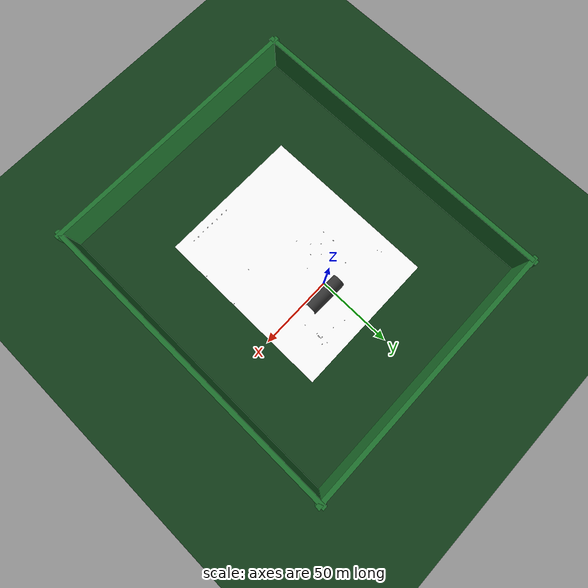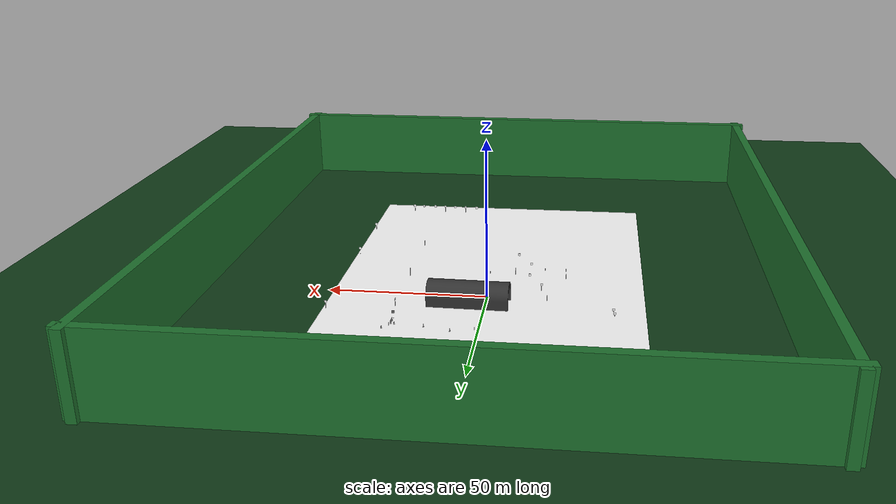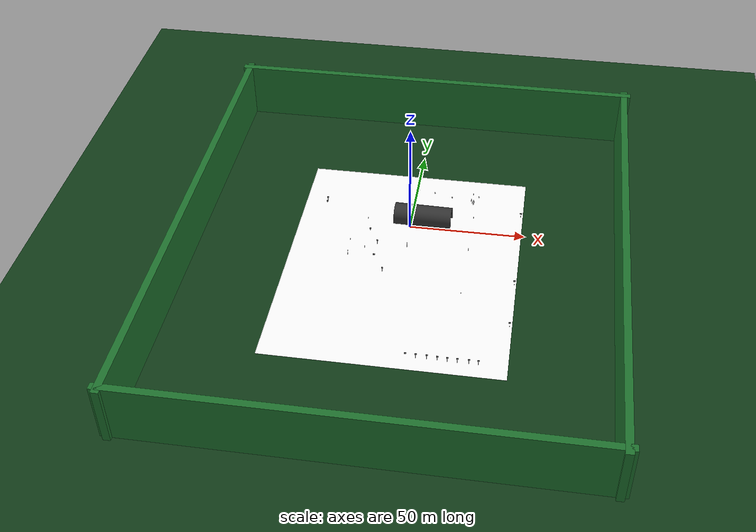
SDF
<sdf version="1.10">
 <world name="benim_dunyam">
  <plugin name="gz::sim::systems::UserCommands" filename="gz-sim-user-commands-system"/>
  <plugin name="gz::sim::systems::Sensors" filename="gz-sim-sensors-system">
   <render_engine>ogre2</render_engine>
  </plugin>
  <plugin name="gz::sim::systems::Physics" filename="gz-sim-physics-system"/>
  <plugin name="gz::sim::systems::SceneBroadcaster" filename="gz-sim-scene-broadcaster-system"/>
  <plugin name="gz::sim::systems::Imu" filename="gz-sim-imu-system"/>
  <plugin name="gz::sim::systems::NavSat" filename="gz-sim-navsat-system"/>
  <spherical_coordinates>
   <surface_model>EARTH_WGS84</surface_model>
   <world_frame_orientation>ENU</world_frame_orientation>
   <latitude_deg>40.7899</latitude_deg>
   <longitude_deg>29.5089</longitude_deg>
   <elevation>30.0</elevation>
   <heading_deg>0</heading_deg>
  </spherical_coordinates>
  <gravity>0 0 -9.8000000000000007</gravity>
  <magnetic_field>5.5644999999999998e-06 2.2875799999999999e-05 -4.2388400000000002e-05</magnetic_field>
  <atmosphere type="adiabatic"/>
  <physics type="ode">
   <max_step_size>0.004</max_step_size>
   <real_time_factor>1</real_time_factor>
   <real_time_update_rate>250</real_time_update_rate>
  </physics>
  <scene>
   <ambient>0.400000006 0.400000006 0.400000006 1</ambient>
   <background>0.300000012 0.600000024 0.899999976 1</background>
   <shadows>false</shadows>
  </scene>
  <model name="zemin">
   <static>true</static>
   <link name="link">
    <collision name="collision">
     <geometry><plane><normal>0 0 1</normal><size>1000 1000</size></plane></geometry>
    </collision>
    <visual name="visual">
     <geometry><plane><normal>0 0 1</normal><size>1000 1000</size></plane></geometry>
     <material><ambient>0.06 0.2 0.08 1</ambient><diffuse>0.07 0.24 0.1 1</diffuse></material>
    </visual>
    <inertial>
     <mass>1</mass>
     <inertia><ixx>1</ixx><ixy>0</ixy><ixz>0</ixz><iyy>1</iyy><iyz>0</iyz><izz>1</izz></inertia>
    </inertial>
   </link>
  </model>
  <model name="cevre_duvar_kuzey">
   <static>true</static>
   <pose>0 80 12.5 0 0 0</pose>
   <link name="link">
    <collision name="collision"><geometry><box><size>186 3 25</size></box></geometry></collision>
    <visual name="visual">
     <geometry><box><size>186 3 25</size></box></geometry>
     <material><ambient>0.1 0.4 0.15 1</ambient><diffuse>0.12 0.45 0.18 1</diffuse></material>
    </visual>
   </link>
  </model>
  <model name="cevre_duvar_guney">
   <static>true</static>
   <pose>0 -130 12.5 0 0 0</pose>
   <link name="link">
    <collision name="collision"><geometry><box><size>186 3 25</size></box></geometry></collision>
    <visual name="visual">
     <geometry><box><size>186 3 25</size></box></geometry>
     <material><ambient>0.1 0.4 0.15 1</ambient><diffuse>0.12 0.45 0.18 1</diffuse></material>
    </visual>
   </link>
  </model>
  <model name="cevre_duvar_dogu">
   <static>true</static>
   <pose>90 -25 12.5 0 0 0</pose>
   <link name="link">
    <collision name="collision"><geometry><box><size>3 216 25</size></box></geometry></collision>
    <visual name="visual">
     <geometry><box><size>3 216 25</size></box></geometry>
     <material><ambient>0.1 0.4 0.15 1</ambient><diffuse>0.12 0.45 0.18 1</diffuse></material>
    </visual>
   </link>
  </model>
  <model name="cevre_duvar_bati">
   <static>true</static>
   <pose>-90 -25 12.5 0 0 0</pose>
   <link name="link">
    <collision name="collision"><geometry><box><size>3 216 25</size></box></geometry></collision>
    <visual name="visual">
     <geometry><box><size>3 216 25</size></box></geometry>
     <material><ambient>0.1 0.4 0.15 1</ambient><diffuse>0.12 0.45 0.18 1</diffuse></material>
    </visual>
   </link>
  </model>
  <model name="resimli_kutu">
   <static>true</static>
   <pose>0 -24.217950820922852 0.0099999997764825821 0 0 0</pose>
   <link name="link">
    <collision name="collision">
     <geometry><box><size>97 120 0.10000000000000001</size></box></geometry>
    </collision>
    <visual name="visual">
     <geometry><box><size>97 120 0.10000000000000001</size></box></geometry>
     <material>
      <ambient>1 1 1 1</ambient>
      <diffuse>1 1 1 1</diffuse>
      <pbr><metal><albedo_map>map.jpeg</albedo_map></metal></pbr>
     </material>
    </visual>
    <inertial>
     <mass>1</mass>
     <inertia><ixx>1</ixx><ixy>0</ixy><ixz>0</ixz><iyy>1</iyy><iyz>0</iyz><izz>1</izz></inertia>
    </inertial>
   </link>
  </model>
  <model name="karanlik_tunel">
   <static>true</static>
   <pose>-7.4512128829956055 1.0417424440383911 -0.0001113254766096361 1.5707900011420242 9.6199811833783241e-05 1.5495800128730692</pose>
   <link name="tunel_link">
    <collision name="collision">
     <geometry>
      <mesh>
       <uri>file:///home/bekir/sim2_ws/otonom_projem/teknofest_haritası/tunnel.STL</uri>
       <scale>0.001 0.001 0.001</scale>
      </mesh>
     </geometry>
    </collision>
    <visual name="visual">
     <geometry>
      <mesh>
       <uri>file:///home/bekir/sim2_ws/otonom_projem/teknofest_haritası/tunnel.STL</uri>
       <scale>0.001 0.001 0.001</scale>
      </mesh>
     </geometry>
     <material>
      <ambient>0.200000003 0.200000003 0.200000003 1</ambient>
      <diffuse>0.200000003 0.200000003 0.200000003 1</diffuse>
     </material>
    </visual>
    <inertial>
     <mass>1</mass>
     <inertia><ixx>1</ixx><ixy>0</ixy><ixz>0</ixz><iyy>1</iyy><iyz>0</iyz><izz>1</izz></inertia>
    </inertial>
   </link>
  </model>
  <include>
   <uri>file:///home/bekir/sim2_ws/otonom_projem/models/ileri_ve_sola</uri>
   <name>ileri_ve_sola</name>
   <pose>47.472900390625 -55.592700958251953 0 0 0 1.5137523604266279</pose>
  </include>
  <include>
   <uri>file:///home/bekir/sim2_ws/otonom_projem/models/ileri_mecburi</uri>
   <name>ileri_mecburi</name>
   <pose>47.700298309326172 -31.111000061035156 0 0 0 1.5673020140724063</pose>
  </include>
  <include>
   <uri>file:///home/bekir/sim2_ws/otonom_projem/models/doner_kavsak</uri>
   <name>doner_kavsak</name>
   <pose>-7.4564199447631836 -30.832799911499023 0 0 0 1.5745649316766441</pose>
  </include>
  <include>
   <uri>file:///home/bekir/sim2_ws/otonom_projem/models/doner_kavsak</uri>
   <name>doner_kavsak_0</name>
   <pose>0.64328380095955318 -14.002350820563267 0 0 0 0</pose>
  </include>
  <include>
   <uri>file:///home/bekir/sim2_ws/otonom_projem/models/doner_kavsak</uri>
   <name>doner_kavsak_1</name>
   <pose>-16.444700241088867 -6.3995499610900879 0 0 0 1.7411529579494134</pose>
  </include>
  <include>
   <uri>file:///home/bekir/sim2_ws/otonom_projem/models/tunel</uri>
   <name>tunel</name>
   <pose>-18.585091821299244 0.89085390916381824 0 0 0 0</pose>
  </include>
  <include>
   <uri>file:///home/bekir/sim2_ws/otonom_projem/models/tunel</uri>
   <name>tunel_0</name>
   <pose>27.023598720464566 9.4946881823659357 0 0 0 0</pose>
  </include>
  <include>
   <uri>file:///home/bekir/sim2_ws/otonom_projem/models/sola_mecburi</uri>
   <name>sola_mecburi</name>
   <pose>47.542598724365234 13.166600227355957 0 0 0 1.6209210873125985</pose>
  </include>
  <include>
   <uri>file:///home/bekir/sim2_ws/otonom_projem/models/park_yeri</uri>
   <name>park_yeri</name>
   <pose>33.478801727294922 -77.750900268554688 0 0 0 1.5569856221732958</pose>
  </include>
  <include>
   <uri>file:///home/bekir/sim2_ws/otonom_projem/models/park_yeri</uri>
   <name>park_yeri_0</name>
   <pose>29.075799942016602 -77.846000671386719 0 0 0 1.5834751950832771</pose>
  </include>
  <include>
   <uri>file:///home/bekir/sim2_ws/otonom_projem/models/park_yeri</uri>
   <name>park_yeri_1</name>
   <pose>25.192100524902344 -77.93499755859375 0 0 0 1.6052076382958553</pose>
  </include>
  <include>
   <uri>file:///home/bekir/sim2_ws/otonom_projem/models/park_yeri</uri>
   <name>park_yeri_2</name>
   <pose>8.9960098266601562 -77.655899047851562 0 0 0 1.5691756960931018</pose>
  </include>
  <include>
   <uri>file:///home/bekir/sim2_ws/otonom_projem/models/park_yapilmaz</uri>
   <name>park_yapilmaz</name>
   <pose>17.251762390136719 -77.713630676269531 0 0 0 1.5446400052404645</pose>
  </include>
  <include>
   <uri>file:///home/bekir/sim2_ws/otonom_projem/models/park_yapilmaz</uri>
   <name>park_yapilmaz_0</name>
   <pose>12.999500274658203 -77.689903259277344 0 0 0 1.5768943109040798</pose>
  </include>
  <include>
   <uri>file:///home/bekir/sim2_ws/otonom_projem/models/park_yapilmaz</uri>
   <name>park_yapilmaz_1</name>
   <pose>21.345500946044922 -77.773597717285156 0 0 0 1.576919346272964</pose>
  </include>
  <include>
   <uri>file:///home/bekir/sim2_ws/otonom_projem/models/park_yapilmaz</uri>
   <name>park_yapilmaz_2</name>
   <pose>37.127399444580078 -77.717697143554688 0 0 0 1.5593144509498418</pose>
  </include>
  <include>
   <uri>file:///home/bekir/sim2_ws/otonom_projem/models/traffic_cone</uri>
   <name>traffic_cone</name>
   <pose>25.926326996957258 19.452180500700294 0 0 0 0</pose>
  </include>
  <include>
   <uri>file:///home/bekir/sim2_ws/otonom_projem/models/traffic_cone</uri>
   <name>traffic_cone_0</name>
   <pose>25.973527951162051 20.087473180794717 0 0 0 0</pose>
  </include>
  <include>
   <uri>file:///home/bekir/sim2_ws/otonom_projem/models/traffic_cone</uri>
   <name>traffic_cone_1</name>
   <pose>26.059315281973607 20.75485639546244 0 0 0 0</pose>
  </include>
  <include>
   <uri>file:///home/bekir/sim2_ws/otonom_projem/models/traffic_cone</uri>
   <name>traffic_cone_2</name>
   <pose>25.892039389447376 21.612924291936967 0 0 0 0</pose>
  </include>
  <include>
   <uri>file:///home/bekir/sim2_ws/otonom_projem/models/traffic_cone</uri>
   <name>traffic_cone_3</name>
   <pose>24.865566982384649 21.733112276726388 0 0 0 0</pose>
  </include>
  <include>
   <uri>file:///home/bekir/sim2_ws/otonom_projem/models/traffic_cone</uri>
   <name>engel_koni_1</name>
   <pose>28.0 24.8 0 0 0 0</pose>
  </include>
  <include>
   <uri>file:///home/bekir/sim2_ws/otonom_projem/models/traffic_cone</uri>
   <name>engel_koni_2</name>
   <pose>16.0 22.8 0 0 0 0</pose>
  </include>
  <include>
   <uri>file:///home/bekir/sim2_ws/otonom_projem/models/traffic_cone</uri>
   <name>engel_koni_3</name>
   <pose>8.0 24.8 0 0 0 0</pose>
  </include>
  <include>
   <uri>file:///home/bekir/sim2_ws/otonom_projem/models/saga_donulmez</uri>
   <name>saga_donulmez</name>
   <pose>25.791000366210938 18.105899810791016 0 0 0 -1.5394454577597889</pose>
  </include>
  <include>
   <uri>file:///home/bekir/sim2_ws/otonom_projem/models/gidis_gelis</uri>
   <name>gidis_gelis</name>
   <pose>25.444447529205817 26.051460582423942 0 0 0 0</pose>
  </include>
  <include>
   <uri>file:///home/bekir/sim2_ws/otonom_projem/models/sagdan_gidin</uri>
   <name>sagdan_gidin</name>
   <pose>-7.2653097228200281 -18.333708716522899 0 0 0 0</pose>
  </include>
  <include>
   <uri>file:///home/bekir/sim2_ws/otonom_projem/models/sagdan_gidin</uri>
   <name>sagdan_gidin_0</name>
   <pose>-12.272252082824707 -13.754071235656738 0 0 0 1.5369400024285722</pose>
  </include>
  <include>
   <uri>file:///home/bekir/sim2_ws/otonom_projem/models/sagdan_gidin</uri>
   <name>sagdan_gidin_1</name>
   <pose>-16.892172240397691 -18.447215505310755 0 0 0 0</pose>
  </include>
  <include>
   <uri>file:///home/bekir/sim2_ws/otonom_projem/models/sagdan_gidin</uri>
   <name>sagdan_gidin_2</name>
   <pose>-12.187546730041504 -23.046276092529297 0 0 0 1.5864399632229254</pose>
  </include>
  <include>
   <uri>file:///home/bekir/sim2_ws/otonom_projem/models/saga_donulmez</uri>
   <name>saga_donulmez_0</name>
   <pose>26.517962236059137 -39.546736632517174 0 0 0 0</pose>
  </include>
  <include>
   <uri>file:///home/bekir/sim2_ws/otonom_projem/models/sola_donulmez</uri>
   <name>sola_donulmez</name>
   <pose>26.898099091514446 -14.111856825308676 0 0 0 0</pose>
  </include>
  <include>
   <uri>file:///home/bekir/sim2_ws/otonom_projem/models/sola_donulmez</uri>
   <name>sola_donulmez_1</name>
   <pose>-38.7 10.0 0 0 0 1.71</pose>
  </include>
  <include>
   <uri>file:///home/bekir/sim2_ws/otonom_projem/models/durak</uri>
   <name>durak</name>
   <pose>0.68867765882772147 26.154963572765787 0 0 0 0</pose>
  </include>
  <include>
   <uri>file:///home/bekir/sim2_ws/otonom_projem/models/durak</uri>
   <name>durak_0</name>
   <pose>-39.011001586914062 12.549599647521973 0 0 0 1.7097554124844934</pose>
  </include>
  <include>
   <uri>file:///home/bekir/sim2_ws/otonom_projem/models/girilmez</uri>
   <name>girilmez</name>
   <pose>-23.80620002746582 -14.254682540893555 0 0 0 0</pose>
  </include>
  <include>
   <uri>file:///home/bekir/sim2_ws/otonom_projem/models/doner_kavsak</uri>
   <name>doner_kavsak_2</name>
   <pose>-23.615767931795109 -22.414463801883624 0 0 0 0</pose>
  </include>
  <light name="sun" type="directional">
   <pose>0 0 10 0 0 0</pose>
   <intensity>1</intensity>
   <direction>-0.5 0.10000000000000001 -0.90000000000000002</direction>
   <diffuse>0.800000012 0.800000012 0.800000012 1</diffuse>
   <specular>0.200000003 0.200000003 0.200000003 1</specular>
   <attenuation><range>10</range><linear>1</linear><constant>1</constant><quadratic>0</quadratic></attenuation>
   <spot><inner_angle>0</inner_angle><outer_angle>0</outer_angle><falloff>0</falloff></spot>
  </light>
 </world>
</sdf>

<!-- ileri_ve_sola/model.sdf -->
<sdf version="1.10">
  <model name="ileri_ve_sola">

    <!-- Çarpıp devrilmemesi veya yere düşmemesi için sabitliyoruz -->
    <static>true</static>

    <link name="link">

      <!-- ================= DİREK KISMI ================= -->
      <!-- Direğin Fiziksel Çarpışma Alanı -->
      <collision name="direk_collision">
        <pose>0 0 1.0 0 0 0</pose> <!-- Yerden 1 metre yukarıda merkezi var -->
        <geometry>
          <cylinder>
            <radius>0.05</radius> <!-- 5 cm yarıçap -->
            <length>1.8</length>  <!-- 2 metre uzunluk -->
          </cylinder>
        </geometry>
      </collision>

      <!-- Direğin Görseli -->
      <visual name="direk_visual">
        <pose>0 0 1.0 0 0 0</pose>
        <geometry>
          <cylinder>
            <radius>0.05</radius>
            <length>1.8</length>
          </cylinder>
        </geometry>
        <material>
          <!-- Direk için basit gri renk -->
          <ambient>0.5 0.5 0.5 1</ambient>
          <diffuse>0.5 0.5 0.5 1</diffuse>
        </material>
      </visual>

      <!-- ================= TABELA KISMI ================= -->
      <!-- Tabelanın Fiziksel Çarpışma Alanı -->
      <collision name="tabela_collision">
        <pose>0 0 2.2 0 0 0</pose> <!-- Direğin tepesinde (2.2 metre yüksekte) -->
        <geometry>
          <box>
            <size>0.05 0.8 0.8</size> <!-- Kalınlık: 5cm, Genişlik: 80cm, Boy: 80cm -->
          </box>
        </geometry>
      </collision>

      <!-- Tabelanın Arka Paneli — arka yüzde PNG görünüp algıyı şaşırtmasın diye gri kapak -->
      <visual name="tabela_arka_visual">
        <pose>-0.03 0 2.2 0 0 0</pose>
        <geometry>
          <box>
            <size>0.04 0.8 0.8</size>
          </box>
        </geometry>
        <material>
          <ambient>0.4 0.4 0.4 1</ambient>
          <diffuse>0.4 0.4 0.4 1</diffuse>
        </material>
      </visual>

      <!-- Tabelanın Görseli (İşte PNG Buraya Geliyor) -->
      <visual name="tabela_visual">
        <pose>0 0 2.2 0 0 0</pose>
        <geometry>
          <box>
            <size>0.05 0.8 0.8</size>
          </box>
        </geometry>
        <material>
          <ambient>1 1 1 1</ambient>
          <diffuse>1 1 1 1</diffuse>
          <pbr>
            <metal>
              <!-- DİKKAT: Buradaki yolu kendi klasör adına ve resmine göre düzenle -->
              <albedo_map>model://ileri_ve_sola/materials/ileri_ve_sola.png</albedo_map>
            </metal>
          </pbr>
        </material>
      </visual>

    </link>
  </model>
</sdf>

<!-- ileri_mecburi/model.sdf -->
<sdf version="1.10">
  <model name="ileri_mecburi">

    <!-- Çarpıp devrilmemesi veya yere düşmemesi için sabitliyoruz -->
    <static>true</static>

    <link name="link">

      <!-- ================= DİREK KISMI ================= -->
      <!-- Direğin Fiziksel Çarpışma Alanı -->
      <collision name="direk_collision">
        <pose>0 0 1.0 0 0 0</pose> <!-- Yerden 1 metre yukarıda merkezi var -->
        <geometry>
          <cylinder>
            <radius>0.05</radius> <!-- 5 cm yarıçap -->
            <length>1.8</length>  <!-- 2 metre uzunluk -->
          </cylinder>
        </geometry>
      </collision>

      <!-- Direğin Görseli -->
      <visual name="direk_visual">
        <pose>0 0 1.0 0 0 0</pose>
        <geometry>
          <cylinder>
            <radius>0.05</radius>
            <length>1.8</length>
          </cylinder>
        </geometry>
        <material>
          <!-- Direk için basit gri renk -->
          <ambient>0.5 0.5 0.5 1</ambient>
          <diffuse>0.5 0.5 0.5 1</diffuse>
        </material>
      </visual>

      <!-- ================= TABELA KISMI ================= -->
      <!-- Tabelanın Fiziksel Çarpışma Alanı -->
      <collision name="tabela_collision">
        <pose>0 0 2.2 0 0 0</pose> <!-- Direğin tepesinde (2.2 metre yüksekte) -->
        <geometry>
          <box>
            <size>0.05 0.8 0.8</size> <!-- Kalınlık: 5cm, Genişlik: 80cm, Boy: 80cm -->
          </box>
        </geometry>
      </collision>

      <!-- Tabelanın Arka Paneli — arka yüzde PNG görünüp algıyı şaşırtmasın diye gri kapak -->
      <visual name="tabela_arka_visual">
        <pose>-0.03 0 2.2 0 0 0</pose>
        <geometry>
          <box>
            <size>0.04 0.8 0.8</size>
          </box>
        </geometry>
        <material>
          <ambient>0.4 0.4 0.4 1</ambient>
          <diffuse>0.4 0.4 0.4 1</diffuse>
        </material>
      </visual>

      <!-- Tabelanın Görseli (İşte PNG Buraya Geliyor) -->
      <visual name="tabela_visual">
        <pose>0 0 2.2 0 0 0</pose>
        <geometry>
          <box>
            <size>0.05 0.8 0.8</size>
          </box>
        </geometry>
        <material>
          <ambient>1 1 1 1</ambient>
          <diffuse>1 1 1 1</diffuse>
          <pbr>
            <metal>
              <!-- DİKKAT: Buradaki yolu kendi klasör adına ve resmine göre düzenle -->
              <albedo_map>model://ileri_mecburi/materials/ileri_mecburi.png</albedo_map>
            </metal>
          </pbr>
        </material>
      </visual>

    </link>
  </model>
</sdf>

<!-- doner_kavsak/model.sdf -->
<sdf version="1.10">
  <model name="doner_kavsak">

    <!-- Çarpıp devrilmemesi veya yere düşmemesi için sabitliyoruz -->
    <static>true</static>

    <link name="link">

      <!-- ================= DİREK KISMI ================= -->
      <!-- Direğin Fiziksel Çarpışma Alanı -->
      <collision name="direk_collision">
        <pose>0 0 1.0 0 0 0</pose> <!-- Yerden 1 metre yukarıda merkezi var -->
        <geometry>
          <cylinder>
            <radius>0.05</radius> <!-- 5 cm yarıçap -->
            <length>1.8</length>  <!-- 2 metre uzunluk -->
          </cylinder>
        </geometry>
      </collision>

      <!-- Direğin Görseli -->
      <visual name="direk_visual">
        <pose>0 0 1.0 0 0 0</pose>
        <geometry>
          <cylinder>
            <radius>0.05</radius>
            <length>1.8</length>
          </cylinder>
        </geometry>
        <material>
          <!-- Direk için basit gri renk -->
          <ambient>0.5 0.5 0.5 1</ambient>
          <diffuse>0.5 0.5 0.5 1</diffuse>
        </material>
      </visual>

      <!-- ================= TABELA KISMI ================= -->
      <!-- Tabelanın Fiziksel Çarpışma Alanı -->
      <collision name="tabela_collision">
        <pose>0 0 2.2 0 0 0</pose> <!-- Direğin tepesinde (2.2 metre yüksekte) -->
        <geometry>
          <box>
            <size>0.05 0.8 0.8</size> <!-- Kalınlık: 5cm, Genişlik: 80cm, Boy: 80cm -->
          </box>
        </geometry>
      </collision>

      <!-- Tabelanın Arka Paneli — arka yüzde PNG görünüp algıyı şaşırtmasın diye gri kapak -->
      <visual name="tabela_arka_visual">
        <pose>-0.03 0 2.2 0 0 0</pose>
        <geometry>
          <box>
            <size>0.04 0.8 0.8</size>
          </box>
        </geometry>
        <material>
          <ambient>0.4 0.4 0.4 1</ambient>
          <diffuse>0.4 0.4 0.4 1</diffuse>
        </material>
      </visual>

      <!-- Tabelanın Görseli (İşte PNG Buraya Geliyor) -->
      <visual name="tabela_visual">
        <pose>0 0 2.2 0 0 0</pose>
        <geometry>
          <box>
            <size>0.05 0.8 0.8</size>
          </box>
        </geometry>
        <material>
          <ambient>1 1 1 1</ambient>
          <diffuse>1 1 1 1</diffuse>
          <pbr>
            <metal>
              <!-- DİKKAT: Buradaki yolu kendi klasör adına ve resmine göre düzenle -->
              <albedo_map>model://doner_kavsak/materials/doner_kavsak.png</albedo_map>
            </metal>
          </pbr>
        </material>
      </visual>

    </link>
  </model>
</sdf>

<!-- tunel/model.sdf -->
<sdf version="1.10">
  <model name="tunel">

    <!-- Çarpıp devrilmemesi veya yere düşmemesi için sabitliyoruz -->
    <static>true</static>

    <link name="link">

      <!-- ================= DİREK KISMI ================= -->
      <!-- Direğin Fiziksel Çarpışma Alanı -->
      <collision name="direk_collision">
        <pose>0 0 1.0 0 0 0</pose> <!-- Yerden 1 metre yukarıda merkezi var -->
        <geometry>
          <cylinder>
            <radius>0.05</radius> <!-- 5 cm yarıçap -->
            <length>1.8</length>  <!-- 2 metre uzunluk -->
          </cylinder>
        </geometry>
      </collision>

      <!-- Direğin Görseli -->
      <visual name="direk_visual">
        <pose>0 0 1.0 0 0 0</pose>
        <geometry>
          <cylinder>
            <radius>0.05</radius>
            <length>1.8</length>
          </cylinder>
        </geometry>
        <material>
          <!-- Direk için basit gri renk -->
          <ambient>0.5 0.5 0.5 1</ambient>
          <diffuse>0.5 0.5 0.5 1</diffuse>
        </material>
      </visual>

      <!-- ================= TABELA KISMI ================= -->
      <!-- Tabelanın Fiziksel Çarpışma Alanı -->
      <collision name="tabela_collision">
        <pose>0 0 2.2 0 0 0</pose> <!-- Direğin tepesinde (2.2 metre yüksekte) -->
        <geometry>
          <box>
            <size>0.05 0.8 0.8</size> <!-- Kalınlık: 5cm, Genişlik: 80cm, Boy: 80cm -->
          </box>
        </geometry>
      </collision>

      <!-- Tabelanın Görseli (İşte PNG Buraya Geliyor) -->
      <visual name="tabela_visual">
        <pose>0 0 2.2 0 0 0</pose>
        <geometry>
          <box>
            <size>0.05 0.8 0.8</size>
          </box>
        </geometry>
        <material>
          <ambient>1 1 1 1</ambient>
          <diffuse>1 1 1 1</diffuse>
          <pbr>
            <metal>
              <!-- DİKKAT: Buradaki yolu kendi klasör adına ve resmine göre düzenle -->
              <albedo_map>model://tunel/materials/tunel.png</albedo_map>
            </metal>
          </pbr>
        </material>
      </visual>

    </link>
  </model>
</sdf>

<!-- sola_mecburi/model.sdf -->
<sdf version="1.10">
  <model name="sola_mecburi">

    <!-- Çarpıp devrilmemesi veya yere düşmemesi için sabitliyoruz -->
    <static>true</static>

    <link name="link">

      <!-- ================= DİREK KISMI ================= -->
      <!-- Direğin Fiziksel Çarpışma Alanı -->
      <collision name="direk_collision">
        <pose>0 0 1.0 0 0 0</pose> <!-- Yerden 1 metre yukarıda merkezi var -->
        <geometry>
          <cylinder>
            <radius>0.05</radius> <!-- 5 cm yarıçap -->
            <length>1.8</length>  <!-- 2 metre uzunluk -->
          </cylinder>
        </geometry>
      </collision>

      <!-- Direğin Görseli -->
      <visual name="direk_visual">
        <pose>0 0 1.0 0 0 0</pose>
        <geometry>
          <cylinder>
            <radius>0.05</radius>
            <length>1.8</length>
          </cylinder>
        </geometry>
        <material>
          <!-- Direk için basit gri renk -->
          <ambient>0.5 0.5 0.5 1</ambient>
          <diffuse>0.5 0.5 0.5 1</diffuse>
        </material>
      </visual>

      <!-- ================= TABELA KISMI ================= -->
      <!-- Tabelanın Fiziksel Çarpışma Alanı -->
      <collision name="tabela_collision">
        <pose>0 0 2.2 0 0 0</pose> <!-- Direğin tepesinde (2.2 metre yüksekte) -->
        <geometry>
          <box>
            <size>0.05 0.8 0.8</size> <!-- Kalınlık: 5cm, Genişlik: 80cm, Boy: 80cm -->
          </box>
        </geometry>
      </collision>

      <!-- Tabelanın Arka Paneli — arka yüzde PNG görünüp algıyı şaşırtmasın diye gri kapak -->
      <visual name="tabela_arka_visual">
        <pose>-0.03 0 2.2 0 0 0</pose>
        <geometry>
          <box>
            <size>0.04 0.8 0.8</size>
          </box>
        </geometry>
        <material>
          <ambient>0.4 0.4 0.4 1</ambient>
          <diffuse>0.4 0.4 0.4 1</diffuse>
        </material>
      </visual>

      <!-- Tabelanın Görseli (İşte PNG Buraya Geliyor) -->
      <visual name="tabela_visual">
        <pose>0 0 2.2 0 0 0</pose>
        <geometry>
          <box>
            <size>0.05 0.8 0.8</size>
          </box>
        </geometry>
        <material>
          <ambient>1 1 1 1</ambient>
          <diffuse>1 1 1 1</diffuse>
          <pbr>
            <metal>
              <!-- DİKKAT: Buradaki yolu kendi klasör adına ve resmine göre düzenle -->
              <albedo_map>model://sola_mecburi/materials/sola_mecburi.png</albedo_map>
            </metal>
          </pbr>
        </material>
      </visual>

    </link>
  </model>
</sdf>

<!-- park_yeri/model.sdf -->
<sdf version="1.10">
  <model name="park_yeri">

    <!-- Çarpıp devrilmemesi veya yere düşmemesi için sabitliyoruz -->
    <static>true</static>

    <link name="link">

      <!-- ================= DİREK KISMI ================= -->
      <!-- Direğin Fiziksel Çarpışma Alanı -->
      <collision name="direk_collision">
        <pose>0 0 1.0 0 0 0</pose> <!-- Yerden 1 metre yukarıda merkezi var -->
        <geometry>
          <cylinder>
            <radius>0.05</radius> <!-- 5 cm yarıçap -->
            <length>1.8</length>  <!-- 2 metre uzunluk -->
          </cylinder>
        </geometry>
      </collision>

      <!-- Direğin Görseli -->
      <visual name="direk_visual">
        <pose>0 0 1.0 0 0 0</pose>
        <geometry>
          <cylinder>
            <radius>0.05</radius>
            <length>1.8</length>
          </cylinder>
        </geometry>
        <material>
          <!-- Direk için basit gri renk -->
          <ambient>0.5 0.5 0.5 1</ambient>
          <diffuse>0.5 0.5 0.5 1</diffuse>
        </material>
      </visual>

      <!-- ================= TABELA KISMI ================= -->
      <!-- Tabelanın Fiziksel Çarpışma Alanı -->
      <collision name="tabela_collision">
        <pose>0 0 2.2 0 0 0</pose> <!-- Direğin tepesinde (2.2 metre yüksekte) -->
        <geometry>
          <box>
            <size>0.05 0.8 0.8</size> <!-- Kalınlık: 5cm, Genişlik: 80cm, Boy: 80cm -->
          </box>
        </geometry>
      </collision>

      <!-- Tabelanın Arka Paneli — arka yüzde PNG görünüp algıyı şaşırtmasın diye gri kapak -->
      <visual name="tabela_arka_visual">
        <pose>-0.03 0 2.2 0 0 0</pose>
        <geometry>
          <box>
            <size>0.04 0.8 0.8</size>
          </box>
        </geometry>
        <material>
          <ambient>0.4 0.4 0.4 1</ambient>
          <diffuse>0.4 0.4 0.4 1</diffuse>
        </material>
      </visual>

      <!-- Tabelanın Görseli (İşte PNG Buraya Geliyor) -->
      <visual name="tabela_visual">
        <pose>0 0 2.2 0 0 0</pose>
        <geometry>
          <box>
            <size>0.05 0.8 0.8</size>
          </box>
        </geometry>
        <material>
          <ambient>1 1 1 1</ambient>
          <diffuse>1 1 1 1</diffuse>
          <pbr>
            <metal>
              <!-- DİKKAT: Buradaki yolu kendi klasör adına ve resmine göre düzenle -->
              <albedo_map>model://park_yeri/materials/park_yeri.png</albedo_map>
            </metal>
          </pbr>
        </material>
      </visual>

    </link>
  </model>
</sdf>

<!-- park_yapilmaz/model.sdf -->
<sdf version="1.10">
  <model name="park_yapilmaz">

    <!-- Çarpıp devrilmemesi veya yere düşmemesi için sabitliyoruz -->
    <static>true</static>

    <link name="link">

      <!-- ================= DİREK KISMI ================= -->
      <!-- Direğin Fiziksel Çarpışma Alanı -->
      <collision name="direk_collision">
        <pose>0 0 1.0 0 0 0</pose> <!-- Yerden 1 metre yukarıda merkezi var -->
        <geometry>
          <cylinder>
            <radius>0.05</radius> <!-- 5 cm yarıçap -->
            <length>1.8</length>  <!-- 2 metre uzunluk -->
          </cylinder>
        </geometry>
      </collision>

      <!-- Direğin Görseli -->
      <visual name="direk_visual">
        <pose>0 0 1.0 0 0 0</pose>
        <geometry>
          <cylinder>
            <radius>0.05</radius>
            <length>1.8</length>
          </cylinder>
        </geometry>
        <material>
          <!-- Direk için basit gri renk -->
          <ambient>0.5 0.5 0.5 1</ambient>
          <diffuse>0.5 0.5 0.5 1</diffuse>
        </material>
      </visual>

      <!-- ================= TABELA KISMI ================= -->
      <!-- Tabelanın Fiziksel Çarpışma Alanı -->
      <collision name="tabela_collision">
        <pose>0 0 2.2 0 0 0</pose> <!-- Direğin tepesinde (2.2 metre yüksekte) -->
        <geometry>
          <box>
            <size>0.05 0.8 0.8</size> <!-- Kalınlık: 5cm, Genişlik: 80cm, Boy: 80cm -->
          </box>
        </geometry>
      </collision>

      <!-- Tabelanın Arka Paneli — arka yüzde PNG görünüp algıyı şaşırtmasın diye gri kapak -->
      <visual name="tabela_arka_visual">
        <pose>-0.03 0 2.2 0 0 0</pose>
        <geometry>
          <box>
            <size>0.04 0.8 0.8</size>
          </box>
        </geometry>
        <material>
          <ambient>0.4 0.4 0.4 1</ambient>
          <diffuse>0.4 0.4 0.4 1</diffuse>
        </material>
      </visual>

      <!-- Tabelanın Görseli (İşte PNG Buraya Geliyor) -->
      <visual name="tabela_visual">
        <pose>0 0 2.2 0 0 0</pose>
        <geometry>
          <box>
            <size>0.05 0.8 0.8</size>
          </box>
        </geometry>
        <material>
          <ambient>1 1 1 1</ambient>
          <diffuse>1 1 1 1</diffuse>
          <pbr>
            <metal>
              <!-- DİKKAT: Buradaki yolu kendi klasör adına ve resmine göre düzenle -->
              <albedo_map>model://park_yapilmaz/materials/park_yapilmaz.png</albedo_map>
            </metal>
          </pbr>
        </material>
      </visual>

    </link>
  </model>
</sdf>

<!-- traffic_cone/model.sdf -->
<sdf version="1.4">
  <model name="traffic_cone">
    <link name="link">
      <collision name="collision">
        <geometry>
          <mesh>
            <scale>10 10 10</scale>
            <uri>model://traffic_cone/meshes/traffic_cone.dae</uri>
          </mesh>
        </geometry>
      </collision>
      <visual name="visual">
        <geometry>
          <mesh>
            <scale>10 10 10</scale>
            <uri>model://traffic_cone/meshes/traffic_cone.dae</uri>
          </mesh>
        </geometry>
      </visual>
    </link>
  </model>
</sdf>

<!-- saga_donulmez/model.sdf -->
<sdf version="1.10">
  <model name="saga_donulmez">

    <!-- Çarpıp devrilmemesi veya yere düşmemesi için sabitliyoruz -->
    <static>true</static>

    <link name="link">

      <!-- ================= DİREK KISMI ================= -->
      <!-- Direğin Fiziksel Çarpışma Alanı -->
      <collision name="direk_collision">
        <pose>0 0 1.0 0 0 0</pose> <!-- Yerden 1 metre yukarıda merkezi var -->
        <geometry>
          <cylinder>
            <radius>0.05</radius> <!-- 5 cm yarıçap -->
            <length>1.8</length>  <!-- 2 metre uzunluk -->
          </cylinder>
        </geometry>
      </collision>

      <!-- Direğin Görseli -->
      <visual name="direk_visual">
        <pose>0 0 1.0 0 0 0</pose>
        <geometry>
          <cylinder>
            <radius>0.05</radius>
            <length>1.8</length>
          </cylinder>
        </geometry>
        <material>
          <!-- Direk için basit gri renk -->
          <ambient>0.5 0.5 0.5 1</ambient>
          <diffuse>0.5 0.5 0.5 1</diffuse>
        </material>
      </visual>

      <!-- ================= TABELA KISMI ================= -->
      <!-- Tabelanın Fiziksel Çarpışma Alanı -->
      <collision name="tabela_collision">
        <pose>0 0 2.2 0 0 0</pose> <!-- Direğin tepesinde (2.2 metre yüksekte) -->
        <geometry>
          <box>
            <size>0.05 0.8 0.8</size> <!-- Kalınlık: 5cm, Genişlik: 80cm, Boy: 80cm -->
          </box>
        </geometry>
      </collision>

      <!-- Tabelanın Arka Paneli — arka yüzde PNG görünüp algıyı şaşırtmasın diye gri kapak -->
      <visual name="tabela_arka_visual">
        <pose>-0.03 0 2.2 0 0 0</pose>
        <geometry>
          <box>
            <size>0.04 0.8 0.8</size>
          </box>
        </geometry>
        <material>
          <ambient>0.4 0.4 0.4 1</ambient>
          <diffuse>0.4 0.4 0.4 1</diffuse>
        </material>
      </visual>

      <!-- Tabelanın Görseli (İşte PNG Buraya Geliyor) -->
      <visual name="tabela_visual">
        <pose>0 0 2.2 0 0 0</pose>
        <geometry>
          <box>
            <size>0.05 0.8 0.8</size>
          </box>
        </geometry>
        <material>
          <ambient>1 1 1 1</ambient>
          <diffuse>1 1 1 1</diffuse>
          <pbr>
            <metal>
              <!-- DİKKAT: Buradaki yolu kendi klasör adına ve resmine göre düzenle -->
              <albedo_map>model://saga_donulmez/materials/saga_donulmez.png</albedo_map>
            </metal>
          </pbr>
        </material>
      </visual>

    </link>
  </model>
</sdf>

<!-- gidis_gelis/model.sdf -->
<sdf version="1.10">
  <model name="gidis_gelis">

    <!-- Çarpıp devrilmemesi veya yere düşmemesi için sabitliyoruz -->
    <static>true</static>

    <link name="link">

      <!-- ================= DİREK KISMI ================= -->
      <!-- Direğin Fiziksel Çarpışma Alanı -->
      <collision name="direk_collision">
        <pose>0 0 1.0 0 0 0</pose> <!-- Yerden 1 metre yukarıda merkezi var -->
        <geometry>
          <cylinder>
            <radius>0.05</radius> <!-- 5 cm yarıçap -->
            <length>1.8</length>  <!-- 2 metre uzunluk -->
          </cylinder>
        </geometry>
      </collision>

      <!-- Direğin Görseli -->
      <visual name="direk_visual">
        <pose>0 0 1.0 0 0 0</pose>
        <geometry>
          <cylinder>
            <radius>0.05</radius>
            <length>1.8</length>
          </cylinder>
        </geometry>
        <material>
          <!-- Direk için basit gri renk -->
          <ambient>0.5 0.5 0.5 1</ambient>
          <diffuse>0.5 0.5 0.5 1</diffuse>
        </material>
      </visual>

      <!-- ================= TABELA KISMI ================= -->
      <!-- Tabelanın Fiziksel Çarpışma Alanı -->
      <collision name="tabela_collision">
        <pose>0 0 2.2 0 0 0</pose> <!-- Direğin tepesinde (2.2 metre yüksekte) -->
        <geometry>
          <box>
            <size>0.05 0.8 0.8</size> <!-- Kalınlık: 5cm, Genişlik: 80cm, Boy: 80cm -->
          </box>
        </geometry>
      </collision>

      <!-- Tabelanın Görseli (İşte PNG Buraya Geliyor) -->
      <visual name="tabela_visual">
        <pose>0 0 2.2 0 0 0</pose>
        <geometry>
          <box>
            <size>0.05 0.8 0.8</size>
          </box>
        </geometry>
        <material>
          <ambient>1 1 1 1</ambient>
          <diffuse>1 1 1 1</diffuse>
          <pbr>
            <metal>
              <!-- DİKKAT: Buradaki yolu kendi klasör adına ve resmine göre düzenle -->
              <albedo_map>model://gidis_gelis/materials/gidis_gelis.png</albedo_map>
            </metal>
          </pbr>
        </material>
      </visual>

    </link>
  </model>
</sdf>

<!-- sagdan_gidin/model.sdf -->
<sdf version="1.10">
  <model name="sagdan_gidin">

    <!-- Çarpıp devrilmemesi veya yere düşmemesi için sabitliyoruz -->
    <static>true</static>

    <link name="link">

      <!-- ================= DİREK KISMI ================= -->
      <!-- Direğin Fiziksel Çarpışma Alanı -->
      <collision name="direk_collision">
        <pose>0 0 1.0 0 0 0</pose> <!-- Yerden 1 metre yukarıda merkezi var -->
        <geometry>
          <cylinder>
            <radius>0.05</radius> <!-- 5 cm yarıçap -->
            <length>1.8</length>  <!-- 2 metre uzunluk -->
          </cylinder>
        </geometry>
      </collision>

      <!-- Direğin Görseli -->
      <visual name="direk_visual">
        <pose>0 0 1.0 0 0 0</pose>
        <geometry>
          <cylinder>
            <radius>0.05</radius>
            <length>1.8</length>
          </cylinder>
        </geometry>
        <material>
          <!-- Direk için basit gri renk -->
          <ambient>0.5 0.5 0.5 1</ambient>
          <diffuse>0.5 0.5 0.5 1</diffuse>
        </material>
      </visual>

      <!-- ================= TABELA KISMI ================= -->
      <!-- Tabelanın Fiziksel Çarpışma Alanı -->
      <collision name="tabela_collision">
        <pose>0 0 2.2 0 0 0</pose> <!-- Direğin tepesinde (2.2 metre yüksekte) -->
        <geometry>
          <box>
            <size>0.05 0.8 0.8</size> <!-- Kalınlık: 5cm, Genişlik: 80cm, Boy: 80cm -->
          </box>
        </geometry>
      </collision>

      <!-- Tabelanın Arka Paneli — arka yüzde PNG görünüp algıyı şaşırtmasın diye gri kapak -->
      <visual name="tabela_arka_visual">
        <pose>-0.03 0 2.2 0 0 0</pose>
        <geometry>
          <box>
            <size>0.04 0.8 0.8</size>
          </box>
        </geometry>
        <material>
          <ambient>0.4 0.4 0.4 1</ambient>
          <diffuse>0.4 0.4 0.4 1</diffuse>
        </material>
      </visual>

      <!-- Tabelanın Görseli (İşte PNG Buraya Geliyor) -->
      <visual name="tabela_visual">
        <pose>0 0 2.2 0 0 0</pose>
        <geometry>
          <box>
            <size>0.05 0.8 0.8</size>
          </box>
        </geometry>
        <material>
          <ambient>1 1 1 1</ambient>
          <diffuse>1 1 1 1</diffuse>
          <pbr>
            <metal>
              <!-- DİKKAT: Buradaki yolu kendi klasör adına ve resmine göre düzenle -->
              <albedo_map>model://sagdan_gidin/materials/sagdan_gidin.png</albedo_map>
            </metal>
          </pbr>
        </material>
      </visual>

    </link>
  </model>
</sdf>

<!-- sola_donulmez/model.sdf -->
<sdf version="1.10">
  <model name="sola_donulmez">

    <!-- Çarpıp devrilmemesi veya yere düşmemesi için sabitliyoruz -->
    <static>true</static>

    <link name="link">

      <!-- ================= DİREK KISMI ================= -->
      <!-- Direğin Fiziksel Çarpışma Alanı -->
      <collision name="direk_collision">
        <pose>0 0 1.0 0 0 0</pose> <!-- Yerden 1 metre yukarıda merkezi var -->
        <geometry>
          <cylinder>
            <radius>0.05</radius> <!-- 5 cm yarıçap -->
            <length>1.8</length>  <!-- 2 metre uzunluk -->
          </cylinder>
        </geometry>
      </collision>

      <!-- Direğin Görseli -->
      <visual name="direk_visual">
        <pose>0 0 1.0 0 0 0</pose>
        <geometry>
          <cylinder>
            <radius>0.05</radius>
            <length>1.8</length>
          </cylinder>
        </geometry>
        <material>
          <!-- Direk için basit gri renk -->
          <ambient>0.5 0.5 0.5 1</ambient>
          <diffuse>0.5 0.5 0.5 1</diffuse>
        </material>
      </visual>

      <!-- ================= TABELA KISMI ================= -->
      <!-- Tabelanın Fiziksel Çarpışma Alanı -->
      <collision name="tabela_collision">
        <pose>0 0 2.2 0 0 0</pose> <!-- Direğin tepesinde (2.2 metre yüksekte) -->
        <geometry>
          <box>
            <size>0.05 0.8 0.8</size> <!-- Kalınlık: 5cm, Genişlik: 80cm, Boy: 80cm -->
          </box>
        </geometry>
      </collision>

      <!-- Tabelanın Arka Paneli — arka yüzde PNG görünüp algıyı şaşırtmasın diye gri kapak -->
      <visual name="tabela_arka_visual">
        <pose>-0.03 0 2.2 0 0 0</pose>
        <geometry>
          <box>
            <size>0.04 0.8 0.8</size>
          </box>
        </geometry>
        <material>
          <ambient>0.4 0.4 0.4 1</ambient>
          <diffuse>0.4 0.4 0.4 1</diffuse>
        </material>
      </visual>

      <!-- Tabelanın Görseli (İşte PNG Buraya Geliyor) -->
      <visual name="tabela_visual">
        <pose>0 0 2.2 0 0 0</pose>
        <geometry>
          <box>
            <size>0.05 0.8 0.8</size>
          </box>
        </geometry>
        <material>
          <ambient>1 1 1 1</ambient>
          <diffuse>1 1 1 1</diffuse>
          <pbr>
            <metal>
              <!-- DİKKAT: Buradaki yolu kendi klasör adına ve resmine göre düzenle -->
              <albedo_map>model://sola_donulmez/materials/sola_donulmez.png</albedo_map>
            </metal>
          </pbr>
        </material>
      </visual>

    </link>
  </model>
</sdf>

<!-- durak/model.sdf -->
<sdf version="1.10">
  <model name="durak">

    <!-- Çarpıp devrilmemesi veya yere düşmemesi için sabitliyoruz -->
    <static>true</static>

    <link name="link">

      <!-- ================= DİREK KISMI ================= -->
      <!-- Direğin Fiziksel Çarpışma Alanı -->
      <collision name="direk_collision">
        <pose>0 0 1.0 0 0 0</pose> <!-- Yerden 1 metre yukarıda merkezi var -->
        <geometry>
          <cylinder>
            <radius>0.05</radius> <!-- 5 cm yarıçap -->
            <length>1.8</length>  <!-- 2 metre uzunluk -->
          </cylinder>
        </geometry>
      </collision>

      <!-- Direğin Görseli -->
      <visual name="direk_visual">
        <pose>0 0 1.0 0 0 0</pose>
        <geometry>
          <cylinder>
            <radius>0.05</radius>
            <length>1.8</length>
          </cylinder>
        </geometry>
        <material>
          <!-- Direk için basit gri renk -->
          <ambient>0.5 0.5 0.5 1</ambient>
          <diffuse>0.5 0.5 0.5 1</diffuse>
        </material>
      </visual>

      <!-- ================= TABELA KISMI ================= -->
      <!-- Tabelanın Fiziksel Çarpışma Alanı -->
      <collision name="tabela_collision">
        <pose>0 0 2.2 0 0 0</pose> <!-- Direğin tepesinde (2.2 metre yüksekte) -->
        <geometry>
          <box>
            <size>0.05 0.8 0.8</size> <!-- Kalınlık: 5cm, Genişlik: 80cm, Boy: 80cm -->
          </box>
        </geometry>
      </collision>

      <!-- Tabelanın Arka Paneli — arka yüzde PNG görünüp algıyı şaşırtmasın diye gri kapak -->
      <visual name="tabela_arka_visual">
        <pose>-0.03 0 2.2 0 0 0</pose>
        <geometry>
          <box>
            <size>0.04 0.8 0.8</size>
          </box>
        </geometry>
        <material>
          <ambient>0.4 0.4 0.4 1</ambient>
          <diffuse>0.4 0.4 0.4 1</diffuse>
        </material>
      </visual>

      <!-- Tabelanın Görseli (İşte PNG Buraya Geliyor) -->
      <visual name="tabela_visual">
        <pose>0 0 2.2 0 0 0</pose>
        <geometry>
          <box>
            <size>0.05 0.8 0.8</size>
          </box>
        </geometry>
        <material>
          <ambient>1 1 1 1</ambient>
          <diffuse>1 1 1 1</diffuse>
          <pbr>
            <metal>
              <!-- DİKKAT: Buradaki yolu kendi klasör adına ve resmine göre düzenle -->
              <albedo_map>model://durak/materials/durak.png</albedo_map>
            </metal>
          </pbr>
        </material>
      </visual>

    </link>
  </model>
</sdf>

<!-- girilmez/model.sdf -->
<sdf version="1.10">
  <model name="girilmez">

    <!-- Çarpıp devrilmemesi veya yere düşmemesi için sabitliyoruz -->
    <static>true</static>

    <link name="link">

      <!-- ================= DİREK KISMI ================= -->
      <!-- Direğin Fiziksel Çarpışma Alanı -->
      <collision name="direk_collision">
        <pose>0 0 1.0 0 0 0</pose> <!-- Yerden 1 metre yukarıda merkezi var -->
        <geometry>
          <cylinder>
            <radius>0.05</radius> <!-- 5 cm yarıçap -->
            <length>1.8</length>  <!-- 2 metre uzunluk -->
          </cylinder>
        </geometry>
      </collision>

      <!-- Direğin Görseli -->
      <visual name="direk_visual">
        <pose>0 0 1.0 0 0 0</pose>
        <geometry>
          <cylinder>
            <radius>0.05</radius>
            <length>1.8</length>
          </cylinder>
        </geometry>
        <material>
          <!-- Direk için basit gri renk -->
          <ambient>0.5 0.5 0.5 1</ambient>
          <diffuse>0.5 0.5 0.5 1</diffuse>
        </material>
      </visual>

      <!-- ================= TABELA KISMI ================= -->
      <!-- Tabelanın Fiziksel Çarpışma Alanı -->
      <collision name="tabela_collision">
        <pose>0 0 2.2 0 0 0</pose> <!-- Direğin tepesinde (2.2 metre yüksekte) -->
        <geometry>
          <box>
            <size>0.05 0.8 0.8</size> <!-- Kalınlık: 5cm, Genişlik: 80cm, Boy: 80cm -->
          </box>
        </geometry>
      </collision>

      <!-- Tabelanın Arka Paneli — arka yüzde PNG görünüp algıyı şaşırtmasın diye gri kapak -->
      <visual name="tabela_arka_visual">
        <pose>-0.03 0 2.2 0 0 0</pose>
        <geometry>
          <box>
            <size>0.04 0.8 0.8</size>
          </box>
        </geometry>
        <material>
          <ambient>0.4 0.4 0.4 1</ambient>
          <diffuse>0.4 0.4 0.4 1</diffuse>
        </material>
      </visual>

      <!-- Tabelanın Görseli (İşte PNG Buraya Geliyor) -->
      <visual name="tabela_visual">
        <pose>0 0 2.2 0 0 0</pose>
        <geometry>
          <box>
            <size>0.05 0.8 0.8</size>
          </box>
        </geometry>
        <material>
          <ambient>1 1 1 1</ambient>
          <diffuse>1 1 1 1</diffuse>
          <pbr>
            <metal>
              <!-- DİKKAT: Buradaki yolu kendi klasör adına ve resmine göre düzenle -->
              <albedo_map>model://girilmez/materials/girilmez.png</albedo_map>
            </metal>
          </pbr>
        </material>
      </visual>

    </link>
  </model>
</sdf>
